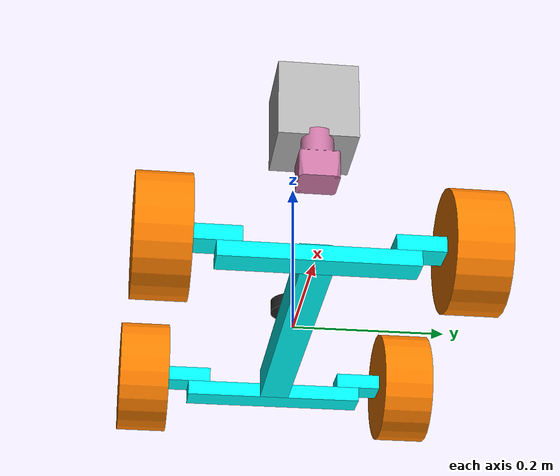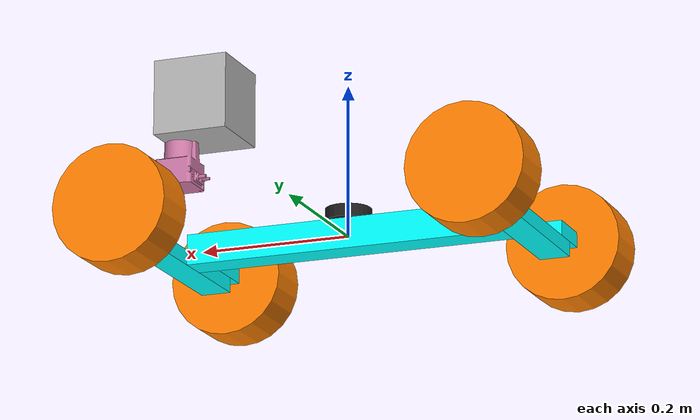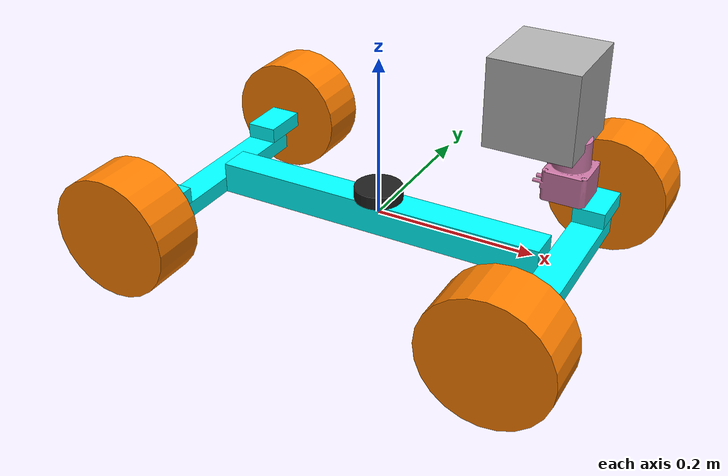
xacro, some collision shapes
<robot name="ackermannCar" xmlns:xacro="http://www.ros.org/wiki/xacro">

	<xacro:property name="wheel_base" value="0.508"/>
	<xacro:property name="wheel_seperation" value="0.366"/>
	<xacro:property name="chassis_thickness" value="0.04"/>
	<xacro:property name="chassis_mass" value="1.0"/>
	<xacro:property name="wheel_dia" value="0.1524"/>
	<xacro:property name="wheel_thickness" value="0.0675"/>
	<xacro:property name="wheel_mass" value="0.1"/>
	<xacro:property name="wheel_velocity" value="10"/>
	<xacro:property name="steer_velocity" value="1.7"/>
	<xacro:property name="steer_limit" value="1.0"/>
	<xacro:property name="velocity_effort" value="5.0"/>
	<xacro:property name="steer_effort" value="50.0"/>

 	<xacro:arg name="parent_name" default="base_link"/>
 	<xacro:arg name="car_name" default="rc1"/>

 	<link name="$(arg parent_name)"/>

	<xacro:include filename="$(find ackermann_car_description)/urdf/iFrameChassis.xacro"/>
	<xacro:include filename="$(find ackermann_car_description)/urdf/imu.gazebo"/>
	<xacro:include filename="$(find ackermann_car_description)/urdf/gps.gazebo"/>
	<xacro:include filename="$(find ackermann_car_description)/urdf/hokuyo.gazebo"/>
	<xacro:include filename="$(find ackermann_car_description)/urdf/kinect.gazebo"/>

	<xacro:iChassis parent_name="$(arg parent_name)" car_name="$(arg car_name)" wheel_base="${wheel_base}" wheel_seperation="${wheel_seperation}" chassis_thickness="${chassis_thickness}" chassis_mass="${chassis_mass}" wheel_dia="${wheel_dia}" steer_limit="${steer_limit}" steer_effort="${steer_effort}" steer_velocity="${steer_velocity}" wheel_thickness="${wheel_thickness}" wheel_mass="${wheel_mass}" wheel_velocity="${wheel_velocity}" velocity_effort="${velocity_effort}"/>

	<xacro:imu parent_link="$(arg parent_name)"/>
	<xacro:gps parent_link="$(arg parent_name)"/>
	<xacro:hokuyo parent_link = "$(arg car_name)_link_front"/>
	<xacro:kinect parent_link = "$(arg parent_name)"/>

	<gazebo>
      	<plugin name="ackermansteer" filename="libackermannsteer.so">
       		<debug>false</debug>
         	<commandTopic>cmd_vel</commandTopic>
         	<odometryTopic>odom</odometryTopic>
         	<odometryFrame>$(arg parent_name)</odometryFrame>
         	<rosDebugLevel>na</rosDebugLevel>
         	<publishWheelJointState>false</publishWheelJointState>
         	<drive_init_velocity>false</drive_init_velocity>

         	<robotBaseFrame>$(arg parent_name)</robotBaseFrame>
         	<publishWheelTF>false</publishWheelTF>
         	<publishOdomTF>true</publishOdomTF>
         	<wheelDiameter>${wheel_dia}</wheelDiameter>
         	<wheelAcceleration>0.02</wheelAcceleration>
         	<wheelTorque>5.0</wheelTorque>
         	<updateRate>100.0</updateRate>

         	<wheelbase>${wheel_base}</wheelbase>
         	<wheelSeparation>${wheel_seperation}</wheelSeparation>

         	<FR_steerJoint>$(arg car_name)_link_front_hing_right_joint</FR_steerJoint>
         	<FR_driveJoint>$(arg car_name)_fr_wheel_joint</FR_driveJoint>
         	<FL_steerJoint>$(arg car_name)_link_front_hing_left_joint</FL_steerJoint>
         	<FL_driveJoint>$(arg car_name)_fl_wheel_joint</FL_driveJoint>
         	<RL_steerJoint>$(arg car_name)_link_back_hing_left_joint</RL_steerJoint>
         	<RL_driveJoint>$(arg car_name)_bl_wheel_joint</RL_driveJoint>
         	<RR_steerJoint>$(arg car_name)_link_back_hing_right_joint</RR_steerJoint>
         	<RR_driveJoint>$(arg car_name)_br_wheel_joint</RR_driveJoint>

         	<drive_p>5.0</drive_p>
         	<drive_i>0.0</drive_i>
         	<drive_d>0.0</drive_d>
         	<drive_imax>1.0</drive_imax>
         	<drive_imin>-1.0</drive_imin>
         	<drive_max_effort>${velocity_effort}</drive_max_effort>

         	<steer_p>5.0</steer_p>
         	<steer_i>0.0</steer_i>
         	<steer_d>0.0</steer_d>
         	<steer_imax>5.0</steer_imax>
         	<steer_imin>-5.0</steer_imin>
         	<steer_max_effort>${steer_effort}</steer_max_effort>
         	<steer_init_angle>0.3</steer_init_angle>
      	</plugin>
    </gazebo>

</robot>

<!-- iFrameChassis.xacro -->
<robot name="iFrame" xmlns:xacro="http://www.ros.org/wiki/xacro">

	<xacro:macro name="iChassis" params="parent_name car_name wheel_base wheel_seperation chassis_thickness chassis_mass wheel_dia steer_limit steer_effort steer_velocity wheel_thickness wheel_mass wheel_velocity velocity_effort">

		<xacro:include filename="$(find ackermann_car_description)/urdf/objects.xacro"/>
		<xacro:include filename="$(find ackermann_car_description)/urdf/transmission.xacro"/>
		<xacro:include filename="$(find ackermann_car_description)/urdf/wheel.xacro"/>

		<xacro:chassislink link_name="${car_name}_link_0" length="${wheel_base - 2*chassis_thickness}" width="${chassis_thickness}" height="${chassis_thickness}" link_mass="${0.333*chassis_mass}"/>

		<joint name="${car_name}_0" type="fixed">
			<origin xyz="0 0 0" rpy="0 0 0"/>
			<parent link="${parent_name}" />
			<child link="${car_name}_link_0"/>
		</joint>

		<gazebo reference="${car_name}_link_0">
    		<material>Gazebo/SkyBlue</material>
        </gazebo>

		<xacro:chassislink link_name="${car_name}_link_front" length="${chassis_thickness}" width="${0.666*wheel_seperation}" height="${0.5*chassis_thickness}" link_mass="${0.666*0.333*chassis_mass}"/>

		<joint name="${car_name}_f1" type="fixed">
			<origin xyz="${0.5*wheel_base - 0.5*chassis_thickness} 0 ${-0.5*0.5* chassis_thickness}" rpy="0 0 0"/>
			<parent link="${car_name}_link_0"/>
			<child link="${car_name}_link_front"/>
		</joint>

		<gazebo reference="${car_name}_link_front">
    		<material>Gazebo/SkyBlue</material>
        </gazebo>

		<xacro:chassislink link_name="${car_name}_link_front_hing_left" length="${chassis_thickness}" width="${0.5*0.334*wheel_seperation}" height="${0.5*chassis_thickness}" link_mass="${0.5*0.334*0.333*chassis_mass}"/>
		<joint name = "${car_name}_link_front_hing_left_joint" type="revolute">
			<origin xyz="0 ${0.5*0.666*wheel_seperation} ${0.5*chassis_thickness}" rpy="0 0 0"/>
			<parent link="${car_name}_link_front"/>
			<child link="${car_name}_link_front_hing_left"/>
			<axis xyz="0 0 1"/>
			<limit lower="${-steer_limit}" upper="${steer_limit}"  effort="${steer_effort}" velocity="${steer_velocity}"/>
		</joint>
		<xacro:transmission_def joint_name="${car_name}_link_front_hing_left_joint" hardware_interface="PositionJointInterface"/>

		<gazebo reference="${car_name}_link_front_hing_left">
    		<material>Gazebo/Black</material>
        </gazebo>

		<xacro:chassislink link_name="${car_name}_link_front_hing_right" length="${chassis_thickness}" width="${0.5*0.334*wheel_seperation}" height="${0.5*chassis_thickness}" link_mass="${0.5*0.334*0.333*chassis_mass}"/>
		<joint name = "${car_name}_link_front_hing_right_joint" type="revolute">
			<origin xyz="0 ${-0.5*0.666*wheel_seperation} ${0.5*chassis_thickness}" rpy="0 0 0"/>
			<parent link="${car_name}_link_front"/>
			<child link="${car_name}_link_front_hing_right"/>
			<axis xyz="0 0 1"/>
			<limit lower="${-steer_limit}" upper="${steer_limit}"  effort="${steer_effort}" velocity="${steer_velocity}"/>
		</joint>
		<xacro:transmission_def joint_name="${car_name}_link_front_hing_right_joint" hardware_interface="PositionJointInterface"/>

		<gazebo reference="${car_name}_link_front_hing_right">
    		<material>Gazebo/Black</material>
        </gazebo>

		<xacro:chassislink link_name="${car_name}_link_back" length="${chassis_thickness}" width="${0.666*wheel_seperation}" height="${0.5*chassis_thickness}" link_mass="${0.666*0.333*chassis_mass}"/>

		<joint name="${car_name}_f2" type="fixed">
			<origin xyz="${-0.5*wheel_base + 0.5*chassis_thickness} 0 ${-0.5*0.5* chassis_thickness}" rpy="0 0 0"/>
			<parent link="${car_name}_link_0"/>
			<child link="${car_name}_link_back"/>
		</joint>

		<gazebo reference="${car_name}_link_back">
    		<material>Gazebo/SkyBlue</material>
        </gazebo>

		<xacro:chassislink link_name="${car_name}_link_back_hing_left" length="${chassis_thickness}" width="${0.5*0.334*wheel_seperation}" height="${0.5*chassis_thickness}" link_mass="${0.5*0.334*0.333*chassis_mass}"/>
		<joint name = "${car_name}_link_back_hing_left_joint" type="revolute">
			<origin xyz="0 ${0.5*0.666*wheel_seperation} ${0.5*chassis_thickness}" rpy="0 0 0"/>
			<parent link="${car_name}_link_back"/>
			<child link="${car_name}_link_back_hing_left"/>
			<axis xyz="0 0 1"/>
			<limit lower="${-steer_limit}" upper="${steer_limit}"  effort="${steer_effort}" velocity="${steer_velocity}"/>
		</joint>
		<xacro:transmission_def joint_name="${car_name}_link_back_hing_left_joint" hardware_interface="PositionJointInterface"/>

		<gazebo reference="${car_name}_link_back_hing_left">
    		<material>Gazebo/Black</material>
        </gazebo>

		<xacro:chassislink link_name="${car_name}_link_back_hing_right" length="${chassis_thickness}" width="${0.5*0.334*wheel_seperation}" height="${0.5*chassis_thickness}" link_mass="${0.5*0.334*0.333*chassis_mass}"/>
		<joint name = "${car_name}_link_back_hing_right_joint" type="revolute">
			<origin xyz="0 ${-0.5*0.666*wheel_seperation} ${0.5*chassis_thickness}" rpy="0 0 0"/>
			<parent link="${car_name}_link_back"/>
			<child link="${car_name}_link_back_hing_right"/>
			<axis xyz="0 0 1"/>
			<limit lower="${-steer_limit}" upper="${steer_limit}"  effort="${steer_effort}" velocity="${steer_velocity}"/>
		</joint>
		<xacro:transmission_def joint_name="${car_name}_link_back_hing_right_joint" hardware_interface="PositionJointInterface"/>

		<gazebo reference="${car_name}_link_back_hing_right">
    		<material>Gazebo/Black</material>
        </gazebo>

		<xacro:wheela parent_name="${car_name}_link_front_hing_left" wheel_name="${car_name}_fl_wheel" x_p="0.0" y_p="${1.05*0.5*0.334*wheel_seperation}" z_p="0.0" row="0.0" pitch="0.0" yaw="0.0" wheel_dia="${wheel_dia}" wheel_thickness="${wheel_thickness}" wheel_mass="${wheel_mass}" wheel_velocity="${wheel_velocity}" velocity_effort="${velocity_effort}"/>
		<gazebo reference="${car_name}_fl_wheel">
    		<material>Gazebo/Orange</material>
        </gazebo>

		<xacro:wheela parent_name="${car_name}_link_front_hing_right" wheel_name="${car_name}_fr_wheel" x_p="0.0" y_p="${-1.05*0.5*0.334*wheel_seperation}" z_p="0.0" row="0.0" pitch="0.0" yaw="0.0" wheel_dia="${wheel_dia}" wheel_thickness="${wheel_thickness}" wheel_mass="${wheel_mass}" wheel_velocity="${wheel_velocity}" velocity_effort="${velocity_effort}"/>
		<gazebo reference="${car_name}_fr_wheel">
    		<material>Gazebo/Orange</material>
        </gazebo>

		<xacro:wheela parent_name="${car_name}_link_back_hing_left" wheel_name="${car_name}_bl_wheel" x_p="0.0" y_p="${1.05*0.5*0.334*wheel_seperation}" z_p="0.0" row="0.0" pitch="0.0" yaw="0.0" wheel_dia="${wheel_dia}" wheel_thickness="${wheel_thickness}" wheel_mass="${wheel_mass}" wheel_velocity="${wheel_velocity}" velocity_effort="${velocity_effort}"/>
		<gazebo reference="${car_name}_bl_wheel">
    		<material>Gazebo/Orange</material>
        </gazebo>

		<xacro:wheela parent_name="${car_name}_link_back_hing_right" wheel_name="${car_name}_br_wheel" x_p="0.0" y_p="${-1.05*0.5*0.334*wheel_seperation}" z_p="0.0" row="0.0" pitch="0.0" yaw="0.0" wheel_dia="${wheel_dia}" wheel_thickness="${wheel_thickness}" wheel_mass="${wheel_mass}" wheel_velocity="${wheel_velocity}" velocity_effort="${velocity_effort}"/>
		<gazebo reference="${car_name}_br_wheel">
    		<material>Gazebo/Orange</material>
        </gazebo>

	</xacro:macro>

</robot>

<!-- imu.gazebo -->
<robot name="imu" xmlns:xacro="http://www.ros.org/wiki/xacro">
	<xacro:macro name="imu" params="parent_link">
		<xacro:property name="dummy_inertia" value="1e-09"/>
	  	<link name="imu_link">
	    	<inertial>
	      		<mass value="0.001"/>
	      		<origin xyz="0 0 0" rpy="0 0 0"/>
	      		<inertia ixx="${dummy_inertia}" ixy="0.0" ixz="0.0" iyy="${dummy_inertia}" iyz="0.0" izz="${dummy_inertia}"/>
	    	</inertial>
	  	</link>
	  	<joint name="imu_joint" type="fixed">
	    	<parent link="${parent_link}" />
	    	<child link="imu_link" />
	  	</joint>

	  	<gazebo>
	    	<plugin name="imu_controller" filename="libhector_gazebo_ros_imu.so">
	      		<robotNamespace>/</robotNamespace>
	      		<updateRate>50.0</updateRate>
	      		<frameId>imu_link</frameId>
	      		<bodyName>imu_link</bodyName>
	      		<topicName>imu/data</topicName>
	      		<accelDrift>0.005 0.005 0.005</accelDrift>
	      		<accelGaussianNoise>0.05 0.05 0.05</accelGaussianNoise>
	      		<rateDrift>0.005 0.005 0.005 </rateDrift>
	      		<rateGaussianNoise>0.005 0.005 0.005 </rateGaussianNoise>
	      		<headingDrift>0.005</headingDrift>
	      		<headingGaussianNoise>0.005</headingGaussianNoise>
	    	</plugin>
	  	</gazebo>
	</xacro:macro>
</robot>

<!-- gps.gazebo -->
<robot name="gps" xmlns:xacro="http://www.ros.org/wiki/xacro">
	<xacro:macro name="gps" params="parent_link">
		<link name="gps_link">
		    <visual>
		     	<geometry>
		        	<cylinder radius="0.03" length="0.016" />
		      	</geometry>
		      	<origin xyz="0 0 0.008" />
		      	<material name="black" />
		    </visual>
		</link>
		<joint name="gps_joint" type="fixed">
		    <parent link="${parent_link}" />
		    <child link="gps_link" />
		    <origin xyz="0 0 0.02" />
		</joint>

		<gazebo>
    		<plugin name="gps_controller" filename="libhector_gazebo_ros_gps.so">
		      <updateRate>10</updateRate>
		      <robotNamespace>/</robotNamespace>
		      <bodyName>gps_link</bodyName>
		      <frameId>${parent_link}</frameId>
		      <topicName>/gps/fix</topicName>
		      <velocityTopicName>/gps/vel</velocityTopicName>
		      <gaussianNoise> 3.5376e-02 6e-02 0.0301 </gaussianNoise>
			  <referenceLatitude>39.325341</referenceLatitude>
		      <referenceLongitude>-76.622410</referenceLongitude>
		      <referenceHeading>0</referenceHeading>
		      <referenceAltitude>64</referenceAltitude>
		      <drift>0 0 0</drift>
    		</plugin>
  		</gazebo>
	</xacro:macro>
</robot>

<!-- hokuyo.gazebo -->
<robot name="hokuyo" xmlns:xacro="http://www.ros.org/wiki/xacro">
	<xacro:macro name="hokuyo" params="parent_link">
		<link name="hokuyo">
    		<visual>
		      <origin xyz="0 0 0" rpy="0 0 0"/>
		      <geometry>
		        <mesh filename = "package://ackermann_car_description/meshes/laser.dae"/>
		      </geometry>
		    </visual>
		    <collision>
		      <origin xyz="0 0 0" rpy=" 0 0 0"/>
		      <geometry>
		        <box size="0.1 0.1 0.1"/>
		      </geometry>
		    </collision>
		    <inertial>
		      <mass value="1e-5"/>
		      <origin xyz="0 0 0" rpy="0 0 0"/>
		      <inertia
		          ixx="1e-6" ixy="0" ixz="0"
		          iyy="1e-6" iyz="0"
		          izz="1e-6"
		      />
		    </inertial>
		</link>

		<joint name="hokuyo_joint" type="fixed">
	    	<parent link="${parent_link}" />
	    	<child link="hokuyo" />
	    	<origin xyz="0 0 0.10" />
	  	</joint>

		<gazebo reference="hokuyo">
		    <sensor type="ray" name="head_hokuyo_sensor">
		      <pose>0 0 0 0 0 0</pose>
		      <visualize>false</visualize>
		      <update_rate>40</update_rate>
		      <ray>
		        <scan>
		          <horizontal>
		            <samples>720</samples>
		            <resolution>1</resolution>
		            <min_angle>-1.570796</min_angle>
		            <max_angle>1.570796</max_angle>
		          </horizontal>
		        </scan>
		        <range>
		          <min>0.10</min>
		          <max>30.0</max>
		          <resolution>0.01</resolution>
		        </range>
		        <noise>
		          <type>gaussian</type>
		          <mean>0.0</mean>
		          <stddev>0.01</stddev>
		        </noise>
		      </ray>
		      <plugin name="gazebo_ros_head_hokuyo_controller" filename="libgazebo_ros_laser.so">
		        <topicName>/scan</topicName>
		        <frameName>hokuyo</frameName>
		      </plugin>
		    </sensor>
		</gazebo>
	</xacro:macro>
</robot>

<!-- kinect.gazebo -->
<robot name="kinect" xmlns:xacro="http://www.ros.org/wiki/xacro">
	<xacro:macro name="kinect" params="parent_link">
		<link name="kinect_link">
		    <visual>
		     	<geometry>
                    <mesh filename="package://ackermann_car_description/meshes/kinect_sensor.stl"
                        scale= "0.01 0.01 0.01"/>
		      	</geometry>
		      	<origin xyz="0.0 -0.1325 0.0" rpy="0 0 1.57" />
		    </visual>
		    <collision>
		      <origin xyz="0 0 0" rpy=" 0 0 0"/>
		      <geometry>
		        <box size="0.1 0.1 0.1"/>
		      </geometry>
		    </collision>
		    <inertial>
		      <mass value="1e-5"/>
		      <origin xyz="0 0 0" rpy="0 0 0"/>
		      <inertia
		          ixx="1e-6" ixy="0" ixz="0"
		          iyy="1e-6" iyz="0"
		          izz="1e-6"/>
		    </inertial>
        </link>
		<joint name="kinect_joint" type="fixed">
		    <parent link="${parent_link}" />
		    <child link="kinect_link" />
		    <origin xyz="0.2 0 0.2" />
		</joint>

		<gazebo reference="kinect_link">
            <sensor name="kinect_camera" type="depth">
                <update_rate>20</update_rate>
                <camera>
                    <horizontal_fov>1.047198</horizontal_fov>
                    <image>
                        <width>640</width>
                        <height>480</height>
                        <format>B8G8R8</format>
                    </image>
                    <clip>
                        <near>0.05</near>
                        <far>3</far>
                    </clip>
                </camera>
                <plugin name="kinect_controller" filename="libgazebo_ros_openni_kinect.so">
                    <baseline>0.1</baseline>
                    <alwaysOn>true</alwaysOn>
                    <updateRate>10</updateRate>
                    <cameraName>camera_ir</cameraName>
                    <imageTopicName>/camera/color/image_raw</imageTopicName>
                    <cameraInfoTopicName>/camera/color/camera_info</cameraInfoTopicName>
                    <depthImageTopicName>/camera/depth/image_raw</depthImageTopicName>
                    <depthImageCameraInfoTopicName>/camera/depth/camera_info</depthImageCameraInfoTopicName>
                    <pointCloudTopicName>/camera/depth/points</pointCloudTopicName>
                    <frameName>kinect_link</frameName>
                    <distortion_k1>0.0</distortion_k1>
                    <distortion_k2>0.0</distortion_k2>
                    <distortion_k3>0.0</distortion_k3>
                    <distortion_t1>0.0</distortion_t1>
                    <distortion_t2>0.0</distortion_t2>
                    <pointCloudCutoff>0.16</pointCloudCutoff>
                    <pointCloudCutoffMax>10.0</pointCloudCutoffMax>
                </plugin>
            </sensor>
        </gazebo>
	</xacro:macro>
</robot>

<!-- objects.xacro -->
<robot name ="car_parts" xmlns:xacro="http://www.ros.org/wiki/xacro">

	<xacro:macro name="chassislink" params="link_name length width height link_mass">
		<link name="${link_name}">
			<inertial>
				<mass value="${link_mass}"/>
				<origin xyz = "0 0 0" rpy = "0 0 0"/>
				<inertia ixx="1.75e-5" ixy="0.0" ixz="0.0"
						 iyy="1.75e-5" iyz="0.0"
						 izz="1.75e-5"/>
			</inertial>
			<visual>
				<origin xyz = "0 0 0" rpy = "0 0 0"/>
				<geometry>
					<box size="${length} ${width} ${height}"/>
				</geometry>
				<material name="Cyan">
					<color rgba="0 1.0 1.0 1.0"/>
				</material>
			</visual>
			<collision>
				<origin xyz = "0 0 0" rpy = "0 0 0"/>
				<geometry>
					<box size="${length} ${width} ${height}"/>
				</geometry>
			</collision>

		</link>
	</xacro:macro>

	<xacro:macro name="wheel" params="link_name length radius link_mass">
		<link name="${link_name}">
			<inertial>
				<mass value="${link_mass}"/>
				<origin xyz = "0 0 0" rpy="1.57 0 0"/>
				<inertia ixx="1.75e-5" ixy="0.0" ixz="0.0"
						 iyy="1.75e-5" iyz="0.0"
						 izz="1.75e-5"/>
			</inertial>
			<visual>
				<origin xyz = "0 0 0" rpy="1.57 0 0"/>
				<geometry>
					<cylinder length="${length}" radius="${radius}"/>
				</geometry>
				<material name="random">
					<color rgba="1.0 0.5 0.0 1.0"/>
				</material>
			</visual>
			<collision>
				<origin xyz = "0 0 0" rpy="1.57 0 0"/>
				<geometry>
					<cylinder length="${length}" radius="${radius}"/>
				</geometry>
			</collision>
		</link>
	</xacro:macro>

</robot>

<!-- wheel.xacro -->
<robot name="wheels" xmlns:xacro="http://www.ros.org/wiki/xacro">

	<xacro:macro name="wheela" params="parent_name wheel_name x_p y_p z_p row pitch yaw wheel_dia wheel_thickness wheel_mass wheel_velocity velocity_effort">

		<xacro:include filename="$(find ackermann_car_description)/urdf/objects.xacro"/>
		<xacro:include filename="$(find ackermann_car_description)/urdf/transmission.xacro"/>

		<xacro:wheel link_name="${wheel_name}" length="${wheel_thickness}" radius="${0.5*wheel_dia}" link_mass="${wheel_mass}"/>
		<joint name="${wheel_name}_joint" type="continuous">
			<origin xyz="${x_p} ${y_p} ${z_p}" rpy="${row} ${pitch} ${yaw}"/>
			<parent link="${parent_name}"/>
			<child link="${wheel_name}"/>
			<axis xyz="0 1 0"/>
			<limit velocity="${wheel_velocity}" effort="${velocity_effort}"/>
		</joint>

		<xacro:transmission_def joint_name="${wheel_name}_joint" hardware_interface="VelocityJointInterface"/>

	</xacro:macro>

</robot>
